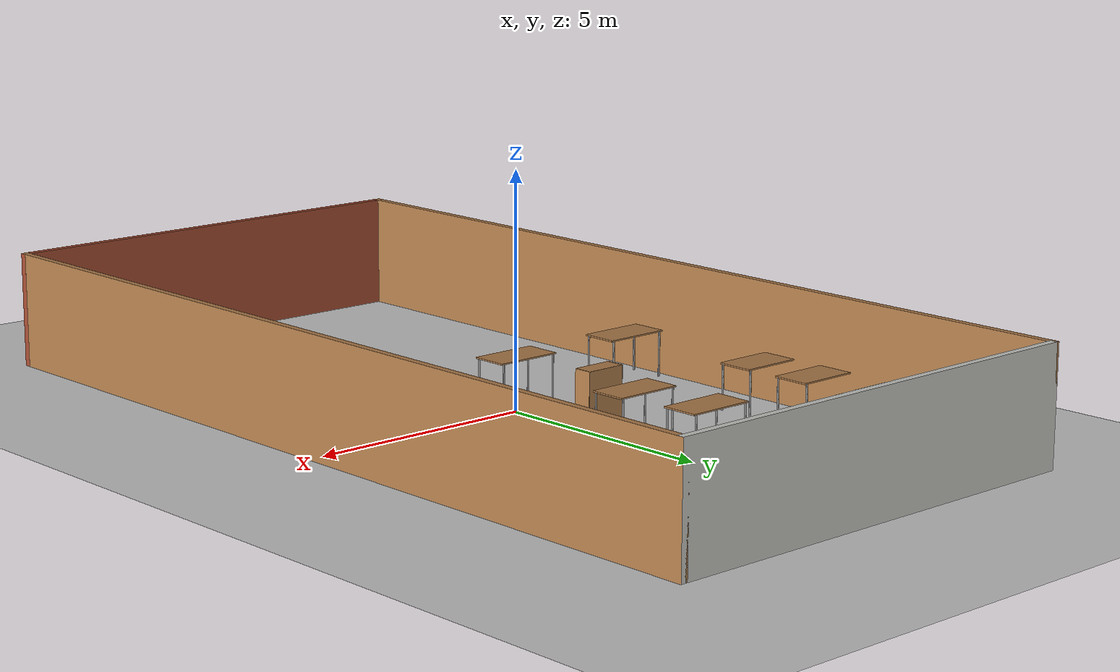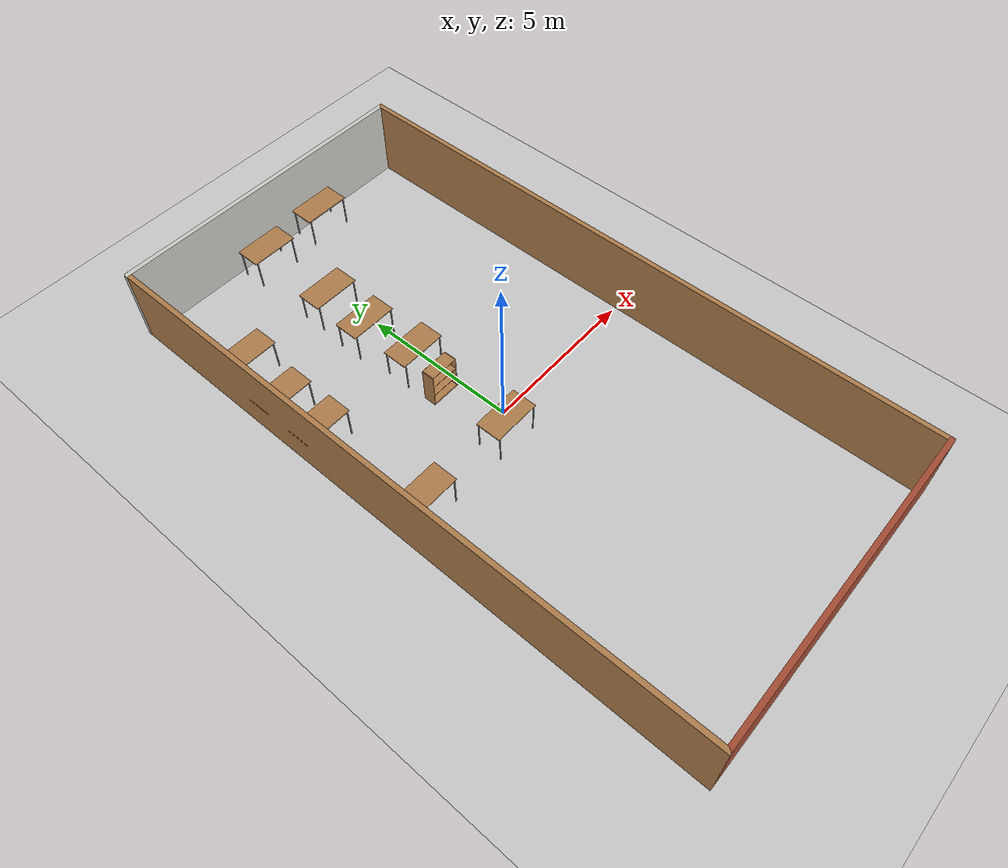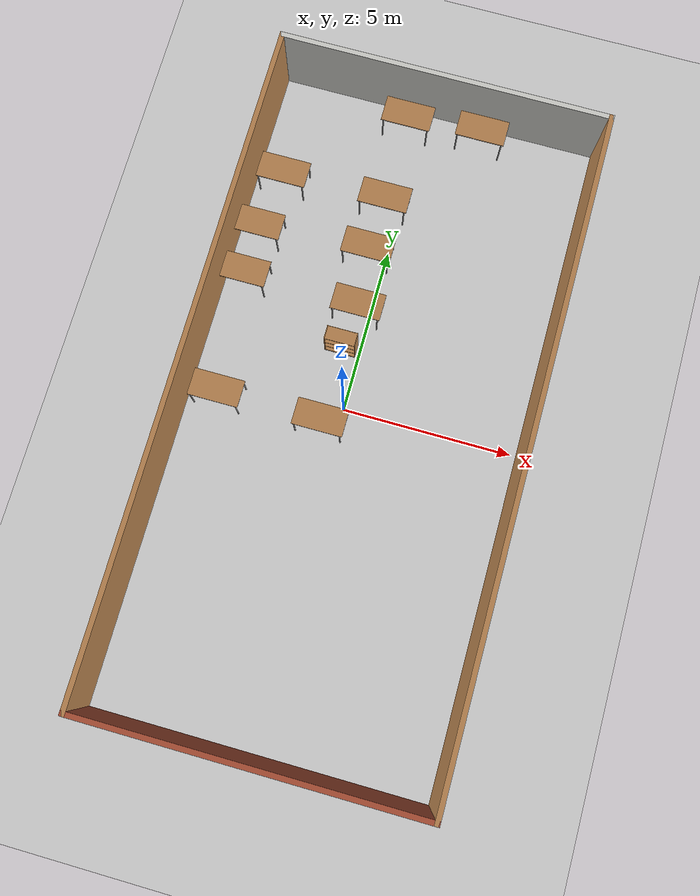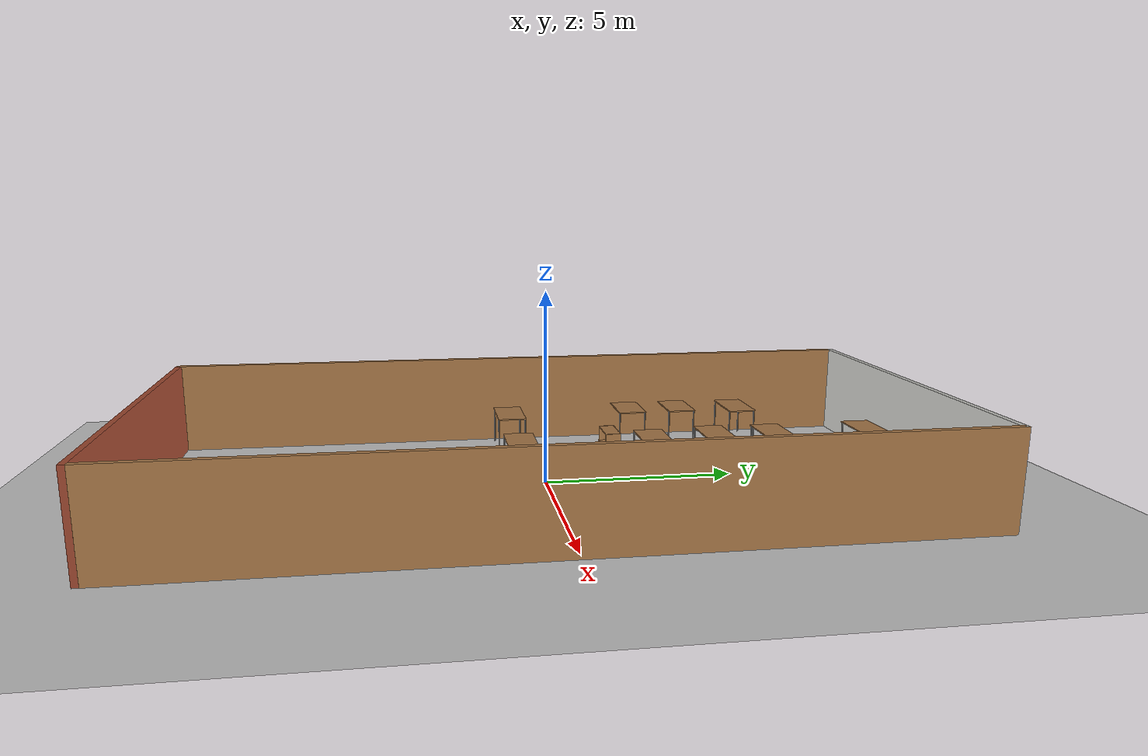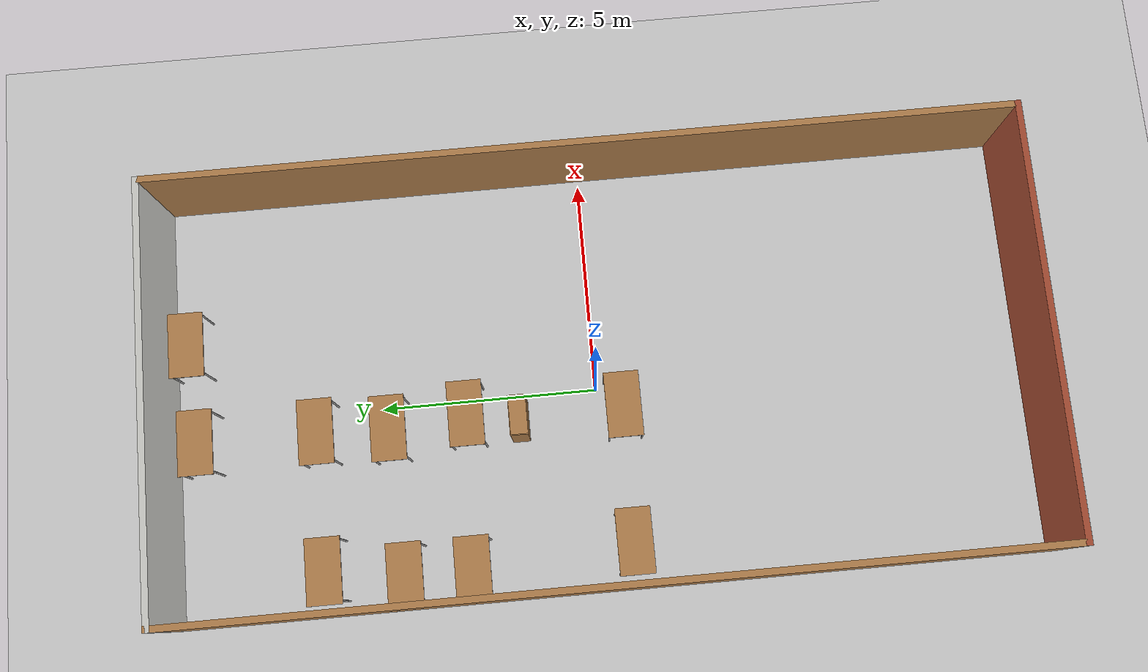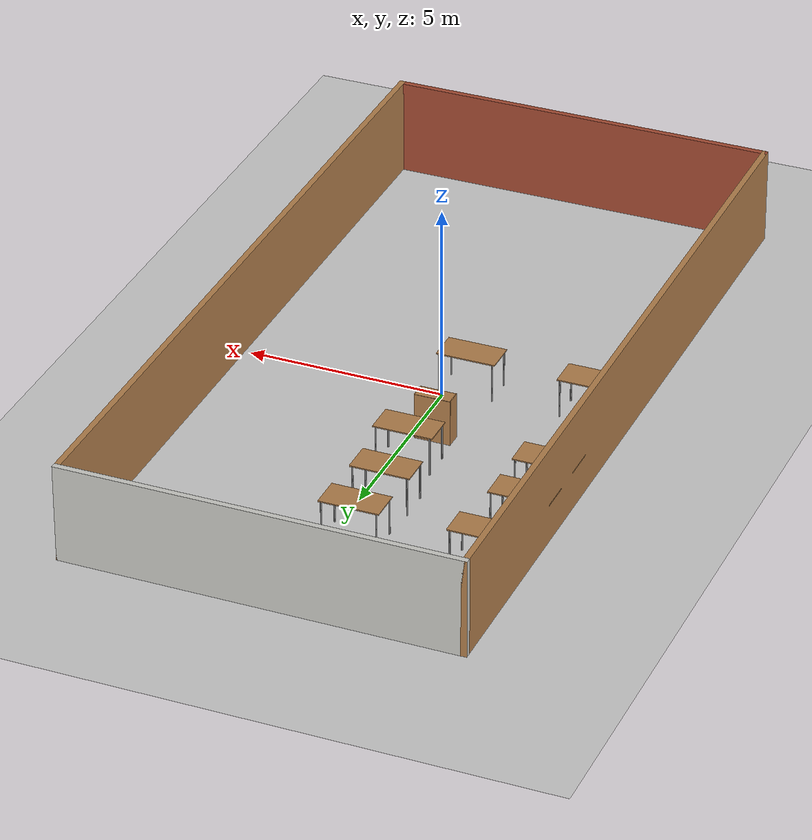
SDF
<sdf version="1.6">
 <world name="default">
  <model name="ground_plane">
   <static>1</static>
   <link name="link">
    <collision name="collision">
     <geometry><plane><normal>0 0 1</normal><size>100 100</size></plane></geometry>
     <surface>
      <contact><collide_bitmask>65535</collide_bitmask></contact>
      <friction><ode><mu>100</mu><mu2>50</mu2></ode></friction>
     </surface>
    </collision>
    <visual name="visual">
     <cast_shadows>0</cast_shadows>
     <geometry><plane><normal>0 0 1</normal><size>100 100</size></plane></geometry>
     <material>
      <script><uri>file://media/materials/scripts/gazebo.material</uri><name>Gazebo/Grey</name></script>
     </material>
    </visual>
   </link>
  </model>
  <model name="davis_106">
   <pose>0.331144 -0.101058 0 0 -0 0</pose>
   <link name="Wall_0">
    <collision name="Wall_0_Collision">
     <geometry><box><size>10 0.15 2.5</size></box></geometry>
     <pose>0 0 1.25 0 -0 0</pose>
    </collision>
    <visual name="Wall_0_Visual">
     <pose>0 0 1.25 0 -0 0</pose>
     <geometry><box><size>10 0.15 2.5</size></box></geometry>
     <material>
      <script><uri>file://media/materials/scripts/gazebo.material</uri><name>Gazebo/CeilingTiled</name></script>
      <ambient>1 1 1 1</ambient>
     </material>
     <meta><layer>0</layer></meta>
    </visual>
    <pose>0 9.925 0 0 -0 0</pose>
   </link>
   <link name="Wall_2">
    <collision name="Wall_2_Collision">
     <geometry><box><size>20 0.15 2.5</size></box></geometry>
     <pose>0 0 1.25 0 -0 0</pose>
    </collision>
    <visual name="Wall_2_Visual">
     <pose>0 0 1.25 0 -0 0</pose>
     <geometry><box><size>20 0.15 2.5</size></box></geometry>
     <material>
      <script><uri>file://media/materials/scripts/gazebo.material</uri><name>Gazebo/Wood</name></script>
      <ambient>1 1 1 1</ambient>
     </material>
     <meta><layer>0</layer></meta>
    </visual>
    <pose>-4.925 0 0 0 0 -1.5708</pose>
   </link>
   <link name="Wall_5">
    <collision name="Wall_5_Collision">
     <geometry><box><size>20 0.15 2.5</size></box></geometry>
     <pose>0 0 1.25 0 -0 0</pose>
    </collision>
    <visual name="Wall_5_Visual">
     <pose>0 0 1.25 0 -0 0</pose>
     <geometry><box><size>20 0.15 2.5</size></box></geometry>
     <material>
      <script><uri>file://media/materials/scripts/gazebo.material</uri><name>Gazebo/Wood</name></script>
      <ambient>1 1 1 1</ambient>
     </material>
     <meta><layer>0</layer></meta>
    </visual>
    <pose>4.925 0 0 0 0 -1.5708</pose>
   </link>
   <link name="Wall_7">
    <collision name="Wall_7_Collision">
     <geometry><box><size>10 0.15 2.5</size></box></geometry>
     <pose>0 0 1.25 0 -0 0</pose>
    </collision>
    <visual name="Wall_7_Visual">
     <pose>0 0 1.25 0 -0 0</pose>
     <geometry><box><size>10 0.15 2.5</size></box></geometry>
     <material>
      <script><uri>file://media/materials/scripts/gazebo.material</uri><name>Gazebo/Bricks</name></script>
      <ambient>1 1 1 1</ambient>
     </material>
     <meta><layer>0</layer></meta>
    </visual>
    <pose>0 -9.925 0 0 -0 0</pose>
   </link>
   <static>1</static>
  </model>
  <model name="table_6">
   <static>1</static>
   <link name="link">
    <collision name="surface">
     <pose>0 0 1 0 -0 0</pose>
     <geometry><box><size>1.5 0.8 0.03</size></box></geometry>
     <surface><friction><ode><mu>0.6</mu><mu2>0.6</mu2></ode></friction></surface>
    </collision>
    <visual name="visual1">
     <pose>0 0 1 0 -0 0</pose>
     <geometry><box><size>1.5 0.8 0.03</size></box></geometry>
     <material>
      <script><uri>file://media/materials/scripts/gazebo.material</uri><name>Gazebo/Wood</name></script>
     </material>
    </visual>
    <collision name="front_left_leg">
     <pose>0.68 0.38 0.5 0 -0 0</pose>
     <geometry><cylinder><radius>0.02</radius><length>1</length></cylinder></geometry>
    </collision>
    <visual name="front_left_leg">
     <pose>0.68 0.38 0.5 0 -0 0</pose>
     <geometry><cylinder><radius>0.02</radius><length>1</length></cylinder></geometry>
     <material>
      <script><uri>file://media/materials/scripts/gazebo.material</uri><name>Gazebo/Grey</name></script>
     </material>
    </visual>
    <collision name="front_right_leg">
     <pose>0.68 -0.38 0.5 0 -0 0</pose>
     <geometry><cylinder><radius>0.02</radius><length>1</length></cylinder></geometry>
    </collision>
    <visual name="front_right_leg">
     <pose>0.68 -0.38 0.5 0 -0 0</pose>
     <geometry><cylinder><radius>0.02</radius><length>1</length></cylinder></geometry>
     <material>
      <script><uri>file://media/materials/scripts/gazebo.material</uri><name>Gazebo/Grey</name></script>
     </material>
    </visual>
    <collision name="back_right_leg">
     <pose>-0.68 -0.38 0.5 0 -0 0</pose>
     <geometry><cylinder><radius>0.02</radius><length>1</length></cylinder></geometry>
    </collision>
    <visual name="back_right_leg">
     <pose>-0.68 -0.38 0.5 0 -0 0</pose>
     <geometry><cylinder><radius>0.02</radius><length>1</length></cylinder></geometry>
     <material>
      <script><uri>file://media/materials/scripts/gazebo.material</uri><name>Gazebo/Grey</name></script>
     </material>
    </visual>
    <collision name="back_left_leg">
     <pose>-0.68 0.38 0.5 0 -0 0</pose>
     <geometry><cylinder><radius>0.02</radius><length>1</length></cylinder></geometry>
    </collision>
    <visual name="back_left_leg">
     <pose>-0.68 0.38 0.5 0 -0 0</pose>
     <geometry><cylinder><radius>0.02</radius><length>1</length></cylinder></geometry>
     <material>
      <script><uri>file://media/materials/scripts/gazebo.material</uri><name>Gazebo/Grey</name></script>
     </material>
    </visual>
   </link>
   <pose>-0.523438 -0.578698 0 0 -0 0</pose>
  </model>
  <model name="table_12">
   <static>1</static>
   <link name="link">
    <collision name="surface">
     <pose>0 0 1 0 -0 0</pose>
     <geometry><box><size>1.5 0.8 0.03</size></box></geometry>
     <surface><friction><ode><mu>0.6</mu><mu2>0.6</mu2></ode></friction></surface>
    </collision>
    <visual name="visual1">
     <pose>0 0 1 0 -0 0</pose>
     <geometry><box><size>1.5 0.8 0.03</size></box></geometry>
     <material>
      <script><uri>file://media/materials/scripts/gazebo.material</uri><name>Gazebo/Wood</name></script>
     </material>
    </visual>
    <collision name="front_left_leg">
     <pose>0.68 0.38 0.5 0 -0 0</pose>
     <geometry><cylinder><radius>0.02</radius><length>1</length></cylinder></geometry>
    </collision>
    <visual name="front_left_leg">
     <pose>0.68 0.38 0.5 0 -0 0</pose>
     <geometry><cylinder><radius>0.02</radius><length>1</length></cylinder></geometry>
     <material>
      <script><uri>file://media/materials/scripts/gazebo.material</uri><name>Gazebo/Grey</name></script>
     </material>
    </visual>
    <collision name="front_right_leg">
     <pose>0.68 -0.38 0.5 0 -0 0</pose>
     <geometry><cylinder><radius>0.02</radius><length>1</length></cylinder></geometry>
    </collision>
    <visual name="front_right_leg">
     <pose>0.68 -0.38 0.5 0 -0 0</pose>
     <geometry><cylinder><radius>0.02</radius><length>1</length></cylinder></geometry>
     <material>
      <script><uri>file://media/materials/scripts/gazebo.material</uri><name>Gazebo/Grey</name></script>
     </material>
    </visual>
    <collision name="back_right_leg">
     <pose>-0.68 -0.38 0.5 0 -0 0</pose>
     <geometry><cylinder><radius>0.02</radius><length>1</length></cylinder></geometry>
    </collision>
    <visual name="back_right_leg">
     <pose>-0.68 -0.38 0.5 0 -0 0</pose>
     <geometry><cylinder><radius>0.02</radius><length>1</length></cylinder></geometry>
     <material>
      <script><uri>file://media/materials/scripts/gazebo.material</uri><name>Gazebo/Grey</name></script>
     </material>
    </visual>
    <collision name="back_left_leg">
     <pose>-0.68 0.38 0.5 0 -0 0</pose>
     <geometry><cylinder><radius>0.02</radius><length>1</length></cylinder></geometry>
    </collision>
    <visual name="back_left_leg">
     <pose>-0.68 0.38 0.5 0 -0 0</pose>
     <geometry><cylinder><radius>0.02</radius><length>1</length></cylinder></geometry>
     <material>
      <script><uri>file://media/materials/scripts/gazebo.material</uri><name>Gazebo/Grey</name></script>
     </material>
    </visual>
   </link>
   <pose>-3.61722 -0.549035 0 0 -0 0</pose>
  </model>
  <model name="table_13">
   <static>1</static>
   <link name="link">
    <collision name="surface">
     <pose>0 0 1 0 -0 0</pose>
     <geometry><box><size>1.5 0.8 0.03</size></box></geometry>
     <surface><friction><ode><mu>0.6</mu><mu2>0.6</mu2></ode></friction></surface>
    </collision>
    <visual name="visual1">
     <pose>0 0 1 0 -0 0</pose>
     <geometry><box><size>1.5 0.8 0.03</size></box></geometry>
     <material>
      <script><uri>file://media/materials/scripts/gazebo.material</uri><name>Gazebo/Wood</name></script>
     </material>
    </visual>
    <collision name="front_left_leg">
     <pose>0.68 0.38 0.5 0 -0 0</pose>
     <geometry><cylinder><radius>0.02</radius><length>1</length></cylinder></geometry>
    </collision>
    <visual name="front_left_leg">
     <pose>0.68 0.38 0.5 0 -0 0</pose>
     <geometry><cylinder><radius>0.02</radius><length>1</length></cylinder></geometry>
     <material>
      <script><uri>file://media/materials/scripts/gazebo.material</uri><name>Gazebo/Grey</name></script>
     </material>
    </visual>
    <collision name="front_right_leg">
     <pose>0.68 -0.38 0.5 0 -0 0</pose>
     <geometry><cylinder><radius>0.02</radius><length>1</length></cylinder></geometry>
    </collision>
    <visual name="front_right_leg">
     <pose>0.68 -0.38 0.5 0 -0 0</pose>
     <geometry><cylinder><radius>0.02</radius><length>1</length></cylinder></geometry>
     <material>
      <script><uri>file://media/materials/scripts/gazebo.material</uri><name>Gazebo/Grey</name></script>
     </material>
    </visual>
    <collision name="back_right_leg">
     <pose>-0.68 -0.38 0.5 0 -0 0</pose>
     <geometry><cylinder><radius>0.02</radius><length>1</length></cylinder></geometry>
    </collision>
    <visual name="back_right_leg">
     <pose>-0.68 -0.38 0.5 0 -0 0</pose>
     <geometry><cylinder><radius>0.02</radius><length>1</length></cylinder></geometry>
     <material>
      <script><uri>file://media/materials/scripts/gazebo.material</uri><name>Gazebo/Grey</name></script>
     </material>
    </visual>
    <collision name="back_left_leg">
     <pose>-0.68 0.38 0.5 0 -0 0</pose>
     <geometry><cylinder><radius>0.02</radius><length>1</length></cylinder></geometry>
    </collision>
    <visual name="back_left_leg">
     <pose>-0.68 0.38 0.5 0 -0 0</pose>
     <geometry><cylinder><radius>0.02</radius><length>1</length></cylinder></geometry>
     <material>
      <script><uri>file://media/materials/scripts/gazebo.material</uri><name>Gazebo/Grey</name></script>
     </material>
    </visual>
   </link>
   <pose>-3.91893 3.09181 0 0 -0 0</pose>
  </model>
  <model name="table_14">
   <static>1</static>
   <link name="link">
    <collision name="surface">
     <pose>0 0 1 0 -0 0</pose>
     <geometry><box><size>1.5 0.8 0.03</size></box></geometry>
     <surface><friction><ode><mu>0.6</mu><mu2>0.6</mu2></ode></friction></surface>
    </collision>
    <visual name="visual1">
     <pose>0 0 1 0 -0 0</pose>
     <geometry><box><size>1.5 0.8 0.03</size></box></geometry>
     <material>
      <script><uri>file://media/materials/scripts/gazebo.material</uri><name>Gazebo/Wood</name></script>
     </material>
    </visual>
    <collision name="front_left_leg">
     <pose>0.68 0.38 0.5 0 -0 0</pose>
     <geometry><cylinder><radius>0.02</radius><length>1</length></cylinder></geometry>
    </collision>
    <visual name="front_left_leg">
     <pose>0.68 0.38 0.5 0 -0 0</pose>
     <geometry><cylinder><radius>0.02</radius><length>1</length></cylinder></geometry>
     <material>
      <script><uri>file://media/materials/scripts/gazebo.material</uri><name>Gazebo/Grey</name></script>
     </material>
    </visual>
    <collision name="front_right_leg">
     <pose>0.68 -0.38 0.5 0 -0 0</pose>
     <geometry><cylinder><radius>0.02</radius><length>1</length></cylinder></geometry>
    </collision>
    <visual name="front_right_leg">
     <pose>0.68 -0.38 0.5 0 -0 0</pose>
     <geometry><cylinder><radius>0.02</radius><length>1</length></cylinder></geometry>
     <material>
      <script><uri>file://media/materials/scripts/gazebo.material</uri><name>Gazebo/Grey</name></script>
     </material>
    </visual>
    <collision name="back_right_leg">
     <pose>-0.68 -0.38 0.5 0 -0 0</pose>
     <geometry><cylinder><radius>0.02</radius><length>1</length></cylinder></geometry>
    </collision>
    <visual name="back_right_leg">
     <pose>-0.68 -0.38 0.5 0 -0 0</pose>
     <geometry><cylinder><radius>0.02</radius><length>1</length></cylinder></geometry>
     <material>
      <script><uri>file://media/materials/scripts/gazebo.material</uri><name>Gazebo/Grey</name></script>
     </material>
    </visual>
    <collision name="back_left_leg">
     <pose>-0.68 0.38 0.5 0 -0 0</pose>
     <geometry><cylinder><radius>0.02</radius><length>1</length></cylinder></geometry>
    </collision>
    <visual name="back_left_leg">
     <pose>-0.68 0.38 0.5 0 -0 0</pose>
     <geometry><cylinder><radius>0.02</radius><length>1</length></cylinder></geometry>
     <material>
      <script><uri>file://media/materials/scripts/gazebo.material</uri><name>Gazebo/Grey</name></script>
     </material>
    </visual>
   </link>
   <pose>-0.51722 6.41686 0 0 -0 0</pose>
  </model>
  <model name="table_15">
   <static>1</static>
   <link name="link">
    <collision name="surface">
     <pose>0 0 1 0 -0 0</pose>
     <geometry><box><size>1.5 0.8 0.03</size></box></geometry>
     <surface><friction><ode><mu>0.6</mu><mu2>0.6</mu2></ode></friction></surface>
    </collision>
    <visual name="visual1">
     <pose>0 0 1 0 -0 0</pose>
     <geometry><box><size>1.5 0.8 0.03</size></box></geometry>
     <material>
      <script><uri>file://media/materials/scripts/gazebo.material</uri><name>Gazebo/Wood</name></script>
     </material>
    </visual>
    <collision name="front_left_leg">
     <pose>0.68 0.38 0.5 0 -0 0</pose>
     <geometry><cylinder><radius>0.02</radius><length>1</length></cylinder></geometry>
    </collision>
    <visual name="front_left_leg">
     <pose>0.68 0.38 0.5 0 -0 0</pose>
     <geometry><cylinder><radius>0.02</radius><length>1</length></cylinder></geometry>
     <material>
      <script><uri>file://media/materials/scripts/gazebo.material</uri><name>Gazebo/Grey</name></script>
     </material>
    </visual>
    <collision name="front_right_leg">
     <pose>0.68 -0.38 0.5 0 -0 0</pose>
     <geometry><cylinder><radius>0.02</radius><length>1</length></cylinder></geometry>
    </collision>
    <visual name="front_right_leg">
     <pose>0.68 -0.38 0.5 0 -0 0</pose>
     <geometry><cylinder><radius>0.02</radius><length>1</length></cylinder></geometry>
     <material>
      <script><uri>file://media/materials/scripts/gazebo.material</uri><name>Gazebo/Grey</name></script>
     </material>
    </visual>
    <collision name="back_right_leg">
     <pose>-0.68 -0.38 0.5 0 -0 0</pose>
     <geometry><cylinder><radius>0.02</radius><length>1</length></cylinder></geometry>
    </collision>
    <visual name="back_right_leg">
     <pose>-0.68 -0.38 0.5 0 -0 0</pose>
     <geometry><cylinder><radius>0.02</radius><length>1</length></cylinder></geometry>
     <material>
      <script><uri>file://media/materials/scripts/gazebo.material</uri><name>Gazebo/Grey</name></script>
     </material>
    </visual>
    <collision name="back_left_leg">
     <pose>-0.68 0.38 0.5 0 -0 0</pose>
     <geometry><cylinder><radius>0.02</radius><length>1</length></cylinder></geometry>
    </collision>
    <visual name="back_left_leg">
     <pose>-0.68 0.38 0.5 0 -0 0</pose>
     <geometry><cylinder><radius>0.02</radius><length>1</length></cylinder></geometry>
     <material>
      <script><uri>file://media/materials/scripts/gazebo.material</uri><name>Gazebo/Grey</name></script>
     </material>
    </visual>
   </link>
   <pose>-0.404593 3.01022 0 0 -0 0</pose>
  </model>
  <model name="table_16">
   <static>1</static>
   <link name="link">
    <collision name="surface">
     <pose>0 0 1 0 -0 0</pose>
     <geometry><box><size>1.5 0.8 0.03</size></box></geometry>
     <surface><friction><ode><mu>0.6</mu><mu2>0.6</mu2></ode></friction></surface>
    </collision>
    <visual name="visual1">
     <pose>0 0 1 0 -0 0</pose>
     <geometry><box><size>1.5 0.8 0.03</size></box></geometry>
     <material>
      <script><uri>file://media/materials/scripts/gazebo.material</uri><name>Gazebo/Wood</name></script>
     </material>
    </visual>
    <collision name="front_left_leg">
     <pose>0.68 0.38 0.5 0 -0 0</pose>
     <geometry><cylinder><radius>0.02</radius><length>1</length></cylinder></geometry>
    </collision>
    <visual name="front_left_leg">
     <pose>0.68 0.38 0.5 0 -0 0</pose>
     <geometry><cylinder><radius>0.02</radius><length>1</length></cylinder></geometry>
     <material>
      <script><uri>file://media/materials/scripts/gazebo.material</uri><name>Gazebo/Grey</name></script>
     </material>
    </visual>
    <collision name="front_right_leg">
     <pose>0.68 -0.38 0.5 0 -0 0</pose>
     <geometry><cylinder><radius>0.02</radius><length>1</length></cylinder></geometry>
    </collision>
    <visual name="front_right_leg">
     <pose>0.68 -0.38 0.5 0 -0 0</pose>
     <geometry><cylinder><radius>0.02</radius><length>1</length></cylinder></geometry>
     <material>
      <script><uri>file://media/materials/scripts/gazebo.material</uri><name>Gazebo/Grey</name></script>
     </material>
    </visual>
    <collision name="back_right_leg">
     <pose>-0.68 -0.38 0.5 0 -0 0</pose>
     <geometry><cylinder><radius>0.02</radius><length>1</length></cylinder></geometry>
    </collision>
    <visual name="back_right_leg">
     <pose>-0.68 -0.38 0.5 0 -0 0</pose>
     <geometry><cylinder><radius>0.02</radius><length>1</length></cylinder></geometry>
     <material>
      <script><uri>file://media/materials/scripts/gazebo.material</uri><name>Gazebo/Grey</name></script>
     </material>
    </visual>
    <collision name="back_left_leg">
     <pose>-0.68 0.38 0.5 0 -0 0</pose>
     <geometry><cylinder><radius>0.02</radius><length>1</length></cylinder></geometry>
    </collision>
    <visual name="back_left_leg">
     <pose>-0.68 0.38 0.5 0 -0 0</pose>
     <geometry><cylinder><radius>0.02</radius><length>1</length></cylinder></geometry>
     <material>
      <script><uri>file://media/materials/scripts/gazebo.material</uri><name>Gazebo/Grey</name></script>
     </material>
    </visual>
   </link>
   <pose>-3.9229 4.60071 0 0 -0 0</pose>
  </model>
  <model name="table_17">
   <static>1</static>
   <link name="link">
    <collision name="surface">
     <pose>0 0 1 0 -0 0</pose>
     <geometry><box><size>1.5 0.8 0.03</size></box></geometry>
     <surface><friction><ode><mu>0.6</mu><mu2>0.6</mu2></ode></friction></surface>
    </collision>
    <visual name="visual1">
     <pose>0 0 1 0 -0 0</pose>
     <geometry><box><size>1.5 0.8 0.03</size></box></geometry>
     <material>
      <script><uri>file://media/materials/scripts/gazebo.material</uri><name>Gazebo/Wood</name></script>
     </material>
    </visual>
    <collision name="front_left_leg">
     <pose>0.68 0.38 0.5 0 -0 0</pose>
     <geometry><cylinder><radius>0.02</radius><length>1</length></cylinder></geometry>
    </collision>
    <visual name="front_left_leg">
     <pose>0.68 0.38 0.5 0 -0 0</pose>
     <geometry><cylinder><radius>0.02</radius><length>1</length></cylinder></geometry>
     <material>
      <script><uri>file://media/materials/scripts/gazebo.material</uri><name>Gazebo/Grey</name></script>
     </material>
    </visual>
    <collision name="front_right_leg">
     <pose>0.68 -0.38 0.5 0 -0 0</pose>
     <geometry><cylinder><radius>0.02</radius><length>1</length></cylinder></geometry>
    </collision>
    <visual name="front_right_leg">
     <pose>0.68 -0.38 0.5 0 -0 0</pose>
     <geometry><cylinder><radius>0.02</radius><length>1</length></cylinder></geometry>
     <material>
      <script><uri>file://media/materials/scripts/gazebo.material</uri><name>Gazebo/Grey</name></script>
     </material>
    </visual>
    <collision name="back_right_leg">
     <pose>-0.68 -0.38 0.5 0 -0 0</pose>
     <geometry><cylinder><radius>0.02</radius><length>1</length></cylinder></geometry>
    </collision>
    <visual name="back_right_leg">
     <pose>-0.68 -0.38 0.5 0 -0 0</pose>
     <geometry><cylinder><radius>0.02</radius><length>1</length></cylinder></geometry>
     <material>
      <script><uri>file://media/materials/scripts/gazebo.material</uri><name>Gazebo/Grey</name></script>
     </material>
    </visual>
    <collision name="back_left_leg">
     <pose>-0.68 0.38 0.5 0 -0 0</pose>
     <geometry><cylinder><radius>0.02</radius><length>1</length></cylinder></geometry>
    </collision>
    <visual name="back_left_leg">
     <pose>-0.68 0.38 0.5 0 -0 0</pose>
     <geometry><cylinder><radius>0.02</radius><length>1</length></cylinder></geometry>
     <material>
      <script><uri>file://media/materials/scripts/gazebo.material</uri><name>Gazebo/Grey</name></script>
     </material>
    </visual>
   </link>
   <pose>-3.65216 6.39257 0 0 -0 0</pose>
  </model>
  <model name="table_18">
   <static>1</static>
   <link name="link">
    <collision name="surface">
     <pose>0 0 1 0 -0 0</pose>
     <geometry><box><size>1.5 0.8 0.03</size></box></geometry>
     <surface><friction><ode><mu>0.6</mu><mu2>0.6</mu2></ode></friction></surface>
    </collision>
    <visual name="visual1">
     <pose>0 0 1 0 -0 0</pose>
     <geometry><box><size>1.5 0.8 0.03</size></box></geometry>
     <material>
      <script><uri>file://media/materials/scripts/gazebo.material</uri><name>Gazebo/Wood</name></script>
     </material>
    </visual>
    <collision name="front_left_leg">
     <pose>0.68 0.38 0.5 0 -0 0</pose>
     <geometry><cylinder><radius>0.02</radius><length>1</length></cylinder></geometry>
    </collision>
    <visual name="front_left_leg">
     <pose>0.68 0.38 0.5 0 -0 0</pose>
     <geometry><cylinder><radius>0.02</radius><length>1</length></cylinder></geometry>
     <material>
      <script><uri>file://media/materials/scripts/gazebo.material</uri><name>Gazebo/Grey</name></script>
     </material>
    </visual>
    <collision name="front_right_leg">
     <pose>0.68 -0.38 0.5 0 -0 0</pose>
     <geometry><cylinder><radius>0.02</radius><length>1</length></cylinder></geometry>
    </collision>
    <visual name="front_right_leg">
     <pose>0.68 -0.38 0.5 0 -0 0</pose>
     <geometry><cylinder><radius>0.02</radius><length>1</length></cylinder></geometry>
     <material>
      <script><uri>file://media/materials/scripts/gazebo.material</uri><name>Gazebo/Grey</name></script>
     </material>
    </visual>
    <collision name="back_right_leg">
     <pose>-0.68 -0.38 0.5 0 -0 0</pose>
     <geometry><cylinder><radius>0.02</radius><length>1</length></cylinder></geometry>
    </collision>
    <visual name="back_right_leg">
     <pose>-0.68 -0.38 0.5 0 -0 0</pose>
     <geometry><cylinder><radius>0.02</radius><length>1</length></cylinder></geometry>
     <material>
      <script><uri>file://media/materials/scripts/gazebo.material</uri><name>Gazebo/Grey</name></script>
     </material>
    </visual>
    <collision name="back_left_leg">
     <pose>-0.68 0.38 0.5 0 -0 0</pose>
     <geometry><cylinder><radius>0.02</radius><length>1</length></cylinder></geometry>
    </collision>
    <visual name="back_left_leg">
     <pose>-0.68 0.38 0.5 0 -0 0</pose>
     <geometry><cylinder><radius>0.02</radius><length>1</length></cylinder></geometry>
     <material>
      <script><uri>file://media/materials/scripts/gazebo.material</uri><name>Gazebo/Grey</name></script>
     </material>
    </visual>
   </link>
   <pose>-0.584673 4.78494 0 0 -0 0</pose>
  </model>
  <model name="table_19">
   <static>1</static>
   <link name="link">
    <collision name="surface">
     <pose>0 0 1 0 -0 0</pose>
     <geometry><box><size>1.5 0.8 0.03</size></box></geometry>
     <surface><friction><ode><mu>0.6</mu><mu2>0.6</mu2></ode></friction></surface>
    </collision>
    <visual name="visual1">
     <pose>0 0 1 0 -0 0</pose>
     <geometry><box><size>1.5 0.8 0.03</size></box></geometry>
     <material>
      <script><uri>file://media/materials/scripts/gazebo.material</uri><name>Gazebo/Wood</name></script>
     </material>
    </visual>
    <collision name="front_left_leg">
     <pose>0.68 0.38 0.5 0 -0 0</pose>
     <geometry><cylinder><radius>0.02</radius><length>1</length></cylinder></geometry>
    </collision>
    <visual name="front_left_leg">
     <pose>0.68 0.38 0.5 0 -0 0</pose>
     <geometry><cylinder><radius>0.02</radius><length>1</length></cylinder></geometry>
     <material>
      <script><uri>file://media/materials/scripts/gazebo.material</uri><name>Gazebo/Grey</name></script>
     </material>
    </visual>
    <collision name="front_right_leg">
     <pose>0.68 -0.38 0.5 0 -0 0</pose>
     <geometry><cylinder><radius>0.02</radius><length>1</length></cylinder></geometry>
    </collision>
    <visual name="front_right_leg">
     <pose>0.68 -0.38 0.5 0 -0 0</pose>
     <geometry><cylinder><radius>0.02</radius><length>1</length></cylinder></geometry>
     <material>
      <script><uri>file://media/materials/scripts/gazebo.material</uri><name>Gazebo/Grey</name></script>
     </material>
    </visual>
    <collision name="back_right_leg">
     <pose>-0.68 -0.38 0.5 0 -0 0</pose>
     <geometry><cylinder><radius>0.02</radius><length>1</length></cylinder></geometry>
    </collision>
    <visual name="back_right_leg">
     <pose>-0.68 -0.38 0.5 0 -0 0</pose>
     <geometry><cylinder><radius>0.02</radius><length>1</length></cylinder></geometry>
     <material>
      <script><uri>file://media/materials/scripts/gazebo.material</uri><name>Gazebo/Grey</name></script>
     </material>
    </visual>
    <collision name="back_left_leg">
     <pose>-0.68 0.38 0.5 0 -0 0</pose>
     <geometry><cylinder><radius>0.02</radius><length>1</length></cylinder></geometry>
    </collision>
    <visual name="back_left_leg">
     <pose>-0.68 0.38 0.5 0 -0 0</pose>
     <geometry><cylinder><radius>0.02</radius><length>1</length></cylinder></geometry>
     <material>
      <script><uri>file://media/materials/scripts/gazebo.material</uri><name>Gazebo/Grey</name></script>
     </material>
    </visual>
   </link>
   <pose>-0.527099 9.13796 0 0 -0 0</pose>
  </model>
  <model name="table_20">
   <static>1</static>
   <link name="link">
    <collision name="surface">
     <pose>0 0 1 0 -0 0</pose>
     <geometry><box><size>1.5 0.8 0.03</size></box></geometry>
     <surface><friction><ode><mu>0.6</mu><mu2>0.6</mu2></ode></friction></surface>
    </collision>
    <visual name="visual1">
     <pose>0 0 1 0 -0 0</pose>
     <geometry><box><size>1.5 0.8 0.03</size></box></geometry>
     <material>
      <script><uri>file://media/materials/scripts/gazebo.material</uri><name>Gazebo/Wood</name></script>
     </material>
    </visual>
    <collision name="front_left_leg">
     <pose>0.68 0.38 0.5 0 -0 0</pose>
     <geometry><cylinder><radius>0.02</radius><length>1</length></cylinder></geometry>
    </collision>
    <visual name="front_left_leg">
     <pose>0.68 0.38 0.5 0 -0 0</pose>
     <geometry><cylinder><radius>0.02</radius><length>1</length></cylinder></geometry>
     <material>
      <script><uri>file://media/materials/scripts/gazebo.material</uri><name>Gazebo/Grey</name></script>
     </material>
    </visual>
    <collision name="front_right_leg">
     <pose>0.68 -0.38 0.5 0 -0 0</pose>
     <geometry><cylinder><radius>0.02</radius><length>1</length></cylinder></geometry>
    </collision>
    <visual name="front_right_leg">
     <pose>0.68 -0.38 0.5 0 -0 0</pose>
     <geometry><cylinder><radius>0.02</radius><length>1</length></cylinder></geometry>
     <material>
      <script><uri>file://media/materials/scripts/gazebo.material</uri><name>Gazebo/Grey</name></script>
     </material>
    </visual>
    <collision name="back_right_leg">
     <pose>-0.68 -0.38 0.5 0 -0 0</pose>
     <geometry><cylinder><radius>0.02</radius><length>1</length></cylinder></geometry>
    </collision>
    <visual name="back_right_leg">
     <pose>-0.68 -0.38 0.5 0 -0 0</pose>
     <geometry><cylinder><radius>0.02</radius><length>1</length></cylinder></geometry>
     <material>
      <script><uri>file://media/materials/scripts/gazebo.material</uri><name>Gazebo/Grey</name></script>
     </material>
    </visual>
    <collision name="back_left_leg">
     <pose>-0.68 0.38 0.5 0 -0 0</pose>
     <geometry><cylinder><radius>0.02</radius><length>1</length></cylinder></geometry>
    </collision>
    <visual name="back_left_leg">
     <pose>-0.68 0.38 0.5 0 -0 0</pose>
     <geometry><cylinder><radius>0.02</radius><length>1</length></cylinder></geometry>
     <material>
      <script><uri>file://media/materials/scripts/gazebo.material</uri><name>Gazebo/Grey</name></script>
     </material>
    </visual>
   </link>
   <pose>1.74321 9.27253 0 0 -0 0</pose>
  </model>
  <model name="bookshelf">
   <static>1</static>
   <link name="link">
    <inertial><mass>1</mass></inertial>
    <collision name="back">
     <pose>0 0.005 0.6 0 -0 0</pose>
     <geometry><box><size>0.9 0.01 1.2</size></box></geometry>
    </collision>
    <visual name="visual1">
     <pose>0 0.005 0.6 0 -0 0</pose>
     <geometry><box><size>0.9 0.01 1.2</size></box></geometry>
     <material>
      <script><uri>file://media/materials/scripts/gazebo.material</uri><name>Gazebo/Wood</name></script>
     </material>
    </visual>
    <collision name="left_side">
     <pose>0.45 -0.195 0.6 0 -0 0</pose>
     <geometry><box><size>0.02 0.4 1.2</size></box></geometry>
    </collision>
    <visual name="visual2">
     <pose>0.45 -0.195 0.6 0 -0 0</pose>
     <geometry><box><size>0.02 0.4 1.2</size></box></geometry>
     <material>
      <script><uri>file://media/materials/scripts/gazebo.material</uri><name>Gazebo/Wood</name></script>
     </material>
    </visual>
    <collision name="right_side">
     <pose>-0.45 -0.195 0.6 0 -0 0</pose>
     <geometry><box><size>0.02 0.4 1.2</size></box></geometry>
    </collision>
    <visual name="visual3">
     <pose>-0.45 -0.195 0.6 0 -0 0</pose>
     <geometry><box><size>0.02 0.4 1.2</size></box></geometry>
     <material>
      <script><uri>file://media/materials/scripts/gazebo.material</uri><name>Gazebo/Wood</name></script>
     </material>
    </visual>
    <collision name="bottom">
     <pose>0 -0.195 0.03 0 -0 0</pose>
     <geometry><box><size>0.88 0.4 0.06</size></box></geometry>
    </collision>
    <visual name="visual4">
     <pose>0 -0.195 0.03 0 -0 0</pose>
     <geometry><box><size>0.88 0.4 0.06</size></box></geometry>
     <material>
      <script><uri>file://media/materials/scripts/gazebo.material</uri><name>Gazebo/Wood</name></script>
     </material>
    </visual>
    <collision name="top">
     <pose>0 -0.195 1.19 0 -0 0</pose>
     <geometry><box><size>0.88 0.4 0.02</size></box></geometry>
    </collision>
    <visual name="visual5">
     <pose>0 -0.195 1.19 0 -0 0</pose>
     <geometry><box><size>0.88 0.4 0.02</size></box></geometry>
     <material>
      <script><uri>file://media/materials/scripts/gazebo.material</uri><name>Gazebo/Wood</name></script>
     </material>
    </visual>
    <collision name="low_shelf">
     <pose>0 -0.195 0.43 0 -0 0</pose>
     <geometry><box><size>0.88 0.4 0.02</size></box></geometry>
    </collision>
    <visual name="visual6">
     <pose>0 -0.195 0.43 0 -0 0</pose>
     <geometry><box><size>0.88 0.4 0.02</size></box></geometry>
     <material>
      <script><uri>file://media/materials/scripts/gazebo.material</uri><name>Gazebo/Wood</name></script>
     </material>
    </visual>
    <collision name="high_shelf">
     <pose>0 -0.195 0.8 0 -0 0</pose>
     <geometry><box><size>0.88 0.4 0.02</size></box></geometry>
    </collision>
    <visual name="visual7">
     <pose>0 -0.195 0.8 0 -0 0</pose>
     <geometry><box><size>0.88 0.4 0.02</size></box></geometry>
     <material>
      <script><uri>file://media/materials/scripts/gazebo.material</uri><name>Gazebo/Wood</name></script>
     </material>
    </visual>
   </link>
   <pose>-0.581801 2.01743 0 0 -0 0</pose>
  </model>
 </world>
</sdf>
